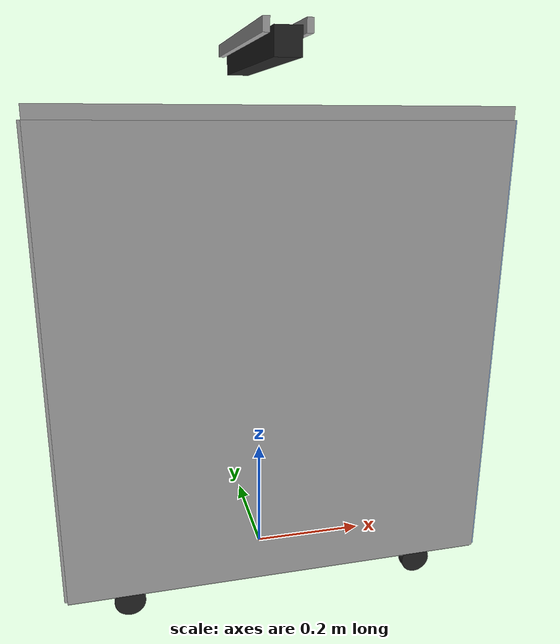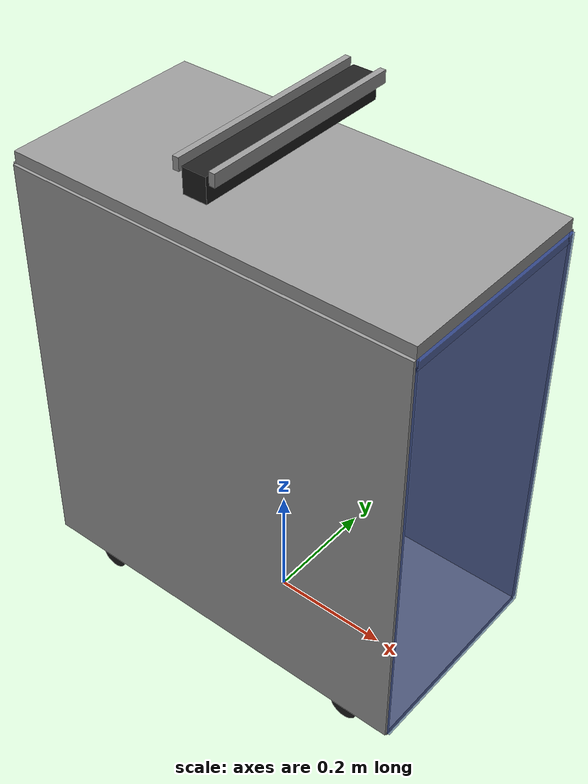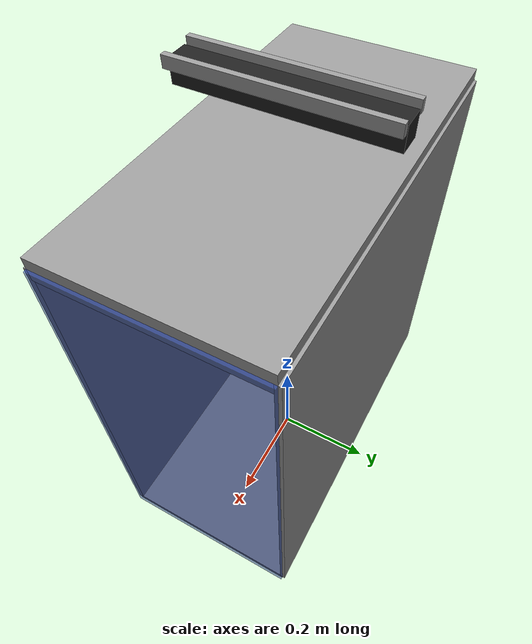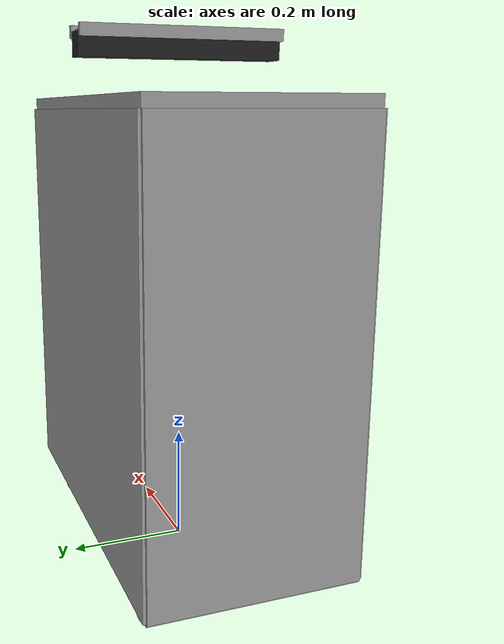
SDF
<?xml version="1.0" ?>
<sdf version="1.4">
  <model name="mps">
    <static>true</static>
    <link name="machine_link">

      <!-- Conveyor Belt -->
      <visual name="visual_conveyor_belt">
        <pose>0 0 0.88 0 0 0 </pose>
	<cast_shadows>false</cast_shadows>
        <geometry>
	  <box>
	    <size>0.04 0.35 0.04</size>
          </box>
        </geometry>
	<material>
	  <script>
	    <uri>file://media/materials/scripts/gazebo.material</uri>
	    <name>Gazebo/Black</name>
	  </script>
	</material>
      </visual>
      <visual name="visual_conveyor_belt_border_west">
        <pose>-0.03 0 0.9 0 0 0 </pose>
	<cast_shadows>false</cast_shadows>
        <geometry>
	  <box>
	    <size>0.01 0.35 0.02</size>
          </box>
        </geometry>
	<material>
	  <script>
	    <uri>file://media/materials/scripts/gazebo.material</uri>
	    <name>Gazebo/Grey</name>
	  </script>
	</material>
      </visual>
      <visual name="visual_conveyor_belt_border_east">
        <pose>0.03 0 0.9 0 0 0 </pose>
	<cast_shadows>false</cast_shadows>
        <geometry>
	  <box>
	    <size>0.01 0.35 0.02</size>
          </box>
        </geometry>
	<material>
	  <script>
	    <uri>file://media/materials/scripts/gazebo.material</uri>
	    <name>Gazebo/Grey</name>
	  </script>
	</material>
      </visual>
      <collision name="collision_conveyor_belt">
        <pose>0 0 0.88 0 0 0 </pose>
        <geometry>
	  <box>
	    <size>0.04 0.35 0.04</size>
          </box>
        </geometry>
      </collision>
      <collision name="collision_conveyor_belt_border_west">
        <pose>-0.03 0 0.9 0 0 0 </pose>
        <geometry>
	  <box>
	    <size>0.01 0.35 0.02</size>
          </box>
        </geometry>
      </collision>
      <collision name="collision_conveyor_belt_border_east">
        <pose>0.03 0 0.9 0 0 0 </pose>
        <geometry>
	  <box>
	    <size>0.01 0.35 0.02</size>
          </box>
        </geometry>
      </collision>

      <!-- Visuals Box -->
      <visual name="visual_base_box_ground">
        <pose>0 0 0.06 0 0 0 </pose>
	<cast_shadows>true</cast_shadows>
        <geometry>
	  <box>
	    <size>0.69 0.35 0.01</size>
          </box>
        </geometry>
	<material>
	  <script>
	    <uri>file://media/materials/scripts/gazebo.material</uri>
	    <name>Gazebo/Grey</name>
	  </script>
	</material>
      </visual>
      <visual name="visual_base_box_wall_south">
        <pose>0 -0.175 0.42 0 0 0 </pose>
	<cast_shadows>true</cast_shadows>
        <geometry>
	  <box>
	    <size>0.69 0.01 0.72</size>
          </box>
        </geometry>
	<material>
	  <script>
	    <uri>file://media/materials/scripts/gazebo.material</uri>
	    <name>Gazebo/Grey</name>
	  </script>
	</material>
      </visual>
      <visual name="visual_base_box_wall_north">
        <pose>0 0.175 0.42 0 0 0 </pose>
	<cast_shadows>true</cast_shadows>
        <geometry>
	  <box>
	    <size>0.69 0.01 0.72</size>
          </box>
        </geometry>
	<material>
	  <script>
	    <uri>file://media/materials/scripts/gazebo.material</uri>
	    <name>Gazebo/Grey</name>
	  </script>
	</material>
      </visual>
      <visual name="visual_base_box_wall_west">
        <pose>-0.345 0 0.42 0 0 0 </pose>
	<cast_shadows>true</cast_shadows>
        <geometry>
	  <box>
	    <size>0.01 0.35 0.72</size>
          </box>
        </geometry>
	<material>
	  <script>
	    <uri>file://media/materials/scripts/gazebo.material</uri>
	    <name>Gazebo/Grey</name>
	  </script>
	</material>
      </visual>
      <visual name="visual_base_box_wall_east">
	<!-- transparent glass -->
        <pose>0.345 0 0.42 0 0 0 </pose>
	<cast_shadows>false</cast_shadows>
        <geometry>
	  <box>
	    <size>0.01 0.35 0.72</size>
          </box>
        </geometry>
	<material>
	  <script>
	    <uri>file://media/materials/scripts/gazebo.material</uri>
	    <name>Gazebo/BlueTransparent</name>
	  </script>
	</material>
      </visual>
      <visual name="visual_base_box_top">
        <pose>0 0 0.78 0 0 0 </pose>
	<cast_shadows>false</cast_shadows>
        <geometry>
	  <box>
	    <size>0.69 0.35 0.04</size>
          </box>
        </geometry>
	<material>
	  <script>
	    <uri>file://media/materials/scripts/gazebo.material</uri>
	    <name>Gazebo/Grey</name>
	  </script>
	</material>
      </visual>

      <!-- Collisions Box -->
      <collision name="collision_base_box_ground">
        <pose>0 0 0.06 0 0 0 </pose>
        <geometry>
	  <box>
	    <size>0.69 0.35 0.01</size>
          </box>
        </geometry>
      </collision>
      <collision name="collision_base_box_wall_south">
        <pose>0 -0.175 0.42 0 0 0 </pose>
        <geometry>
	  <box>
	    <size>0.69 0.01 0.72</size>
          </box>
        </geometry>
      </collision>
      <collision name="collision_base_box_wall_north">
        <pose>0 0.175 0.42 0 0 0 </pose>
        <geometry>
	  <box>
	    <size>0.69 0.01 0.72</size>
          </box>
        </geometry>
      </collision>
      <collision name="collision_base_box_wall_west">
        <pose>-0.345 0 0.42 0 0 0 </pose>
        <geometry>
	  <box>
	    <size>0.01 0.35 0.72</size>
          </box>
        </geometry>
      </collision>
      <collision name="collision_base_box_wall_east">
	<!-- transparent glass -->
        <pose>0.345 0 0.42 0 0 0 </pose>
        <geometry>
	  <box>
	    <size>0.01 0.35 0.72</size>
          </box>
        </geometry>
      </collision>
      <collision name="collision_base_box_top">
        <pose>0 0 0.78 0 0 0 </pose>
        <geometry>
	  <box>
	    <size>0.69 0.35 0.01</size>
          </box>
        </geometry>
      </collision>

      <!-- Wheels -->
      <visual name="visual_base_wheel_0">
        <pose>-0.25 -0.15 0.03 1.57 0 0 </pose>
	<cast_shadows>false</cast_shadows>
        <geometry>
	  <cylinder>
            <radius>0.025</radius>
	    <length>0.015</length>
          </cylinder>
        </geometry>
	<material>
	  <script>
	    <uri>file://media/materials/scripts/gazebo.material</uri>
	    <name>Gazebo/Black</name>
	  </script>
	</material>
      </visual>
      <visual name="visual_base_wheel_1">
        <pose>-0.25 0.15 0.03 1.57 0 0 </pose>
	<cast_shadows>false</cast_shadows>
        <geometry>
	  <cylinder>
            <radius>0.025</radius>
	    <length>0.015</length>
          </cylinder>
        </geometry>
	<material>
	  <script>
	    <uri>file://media/materials/scripts/gazebo.material</uri>
	    <name>Gazebo/Black</name>
	  </script>
	</material>
      </visual>
      <visual name="visual_base_wheel_2">
        <pose>0.25 -0.15 0.03 1.57 0 0 </pose>
	<cast_shadows>false</cast_shadows>
        <geometry>
	  <cylinder>
            <radius>0.025</radius>
	    <length>0.015</length>
          </cylinder>
        </geometry>
	<material>
	  <script>
	    <uri>file://media/materials/scripts/gazebo.material</uri>
	    <name>Gazebo/Black</name>
	  </script>
	</material>
      </visual>
      <visual name="visual_base_wheel_3">
        <pose>0.25 0.15 0.03 1.57 0 0 </pose>
	<cast_shadows>false</cast_shadows>
        <geometry>
	  <cylinder>
            <radius>0.025</radius>
	    <length>0.015</length>
          </cylinder>
        </geometry>
	<material>
	  <script>
	    <uri>file://media/materials/scripts/gazebo.material</uri>
	    <name>Gazebo/Black</name>
	  </script>
	</material>
      </visual>
    </link>
  </model>
</sdf>
